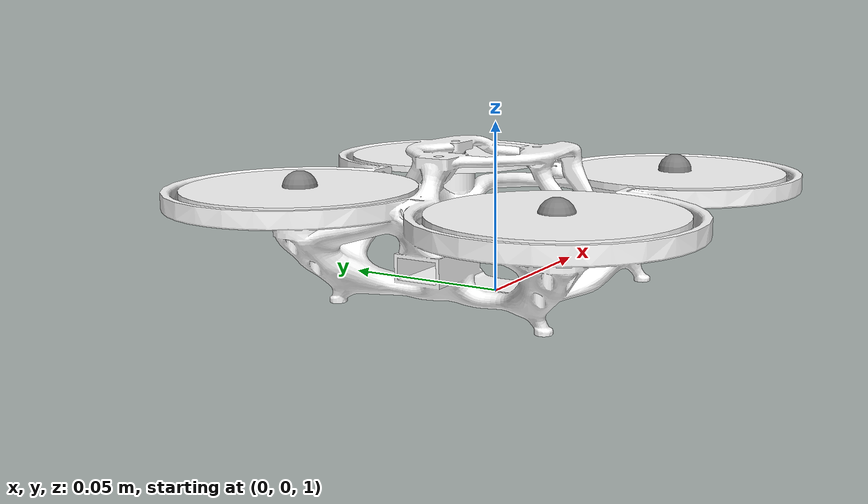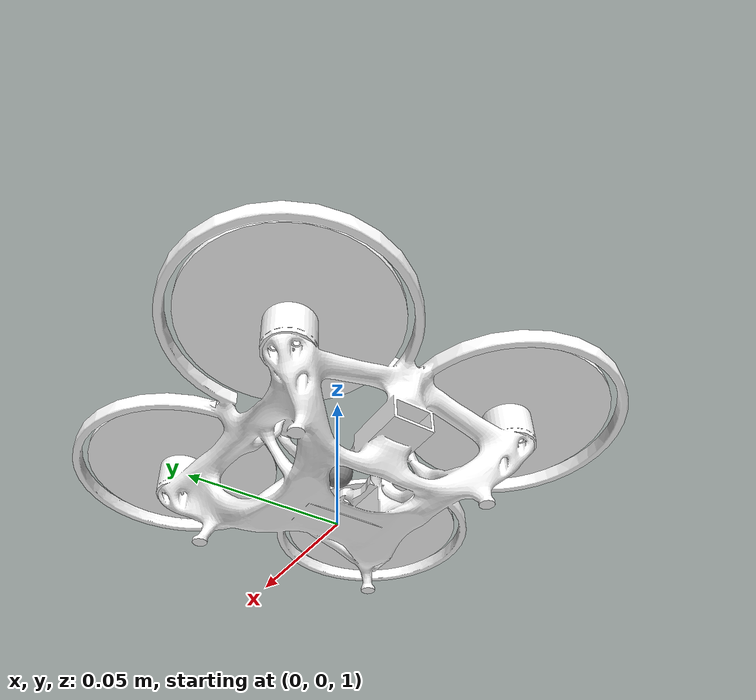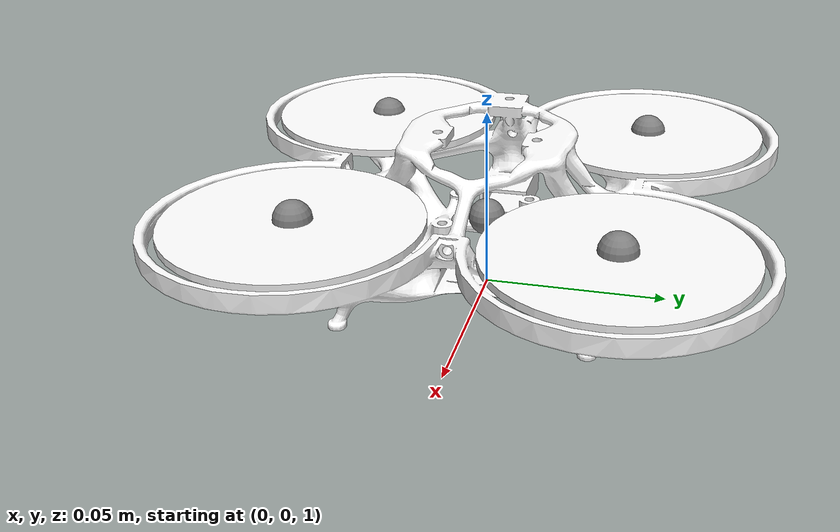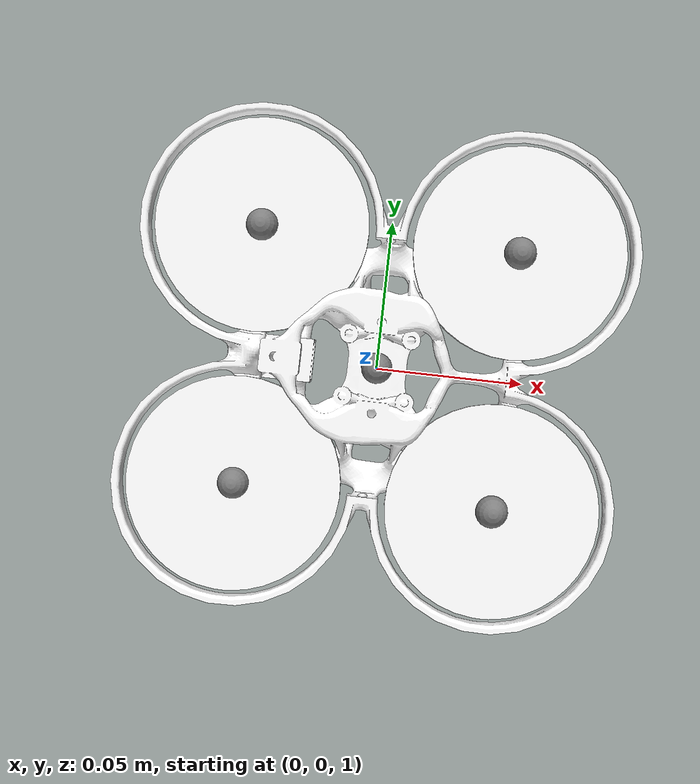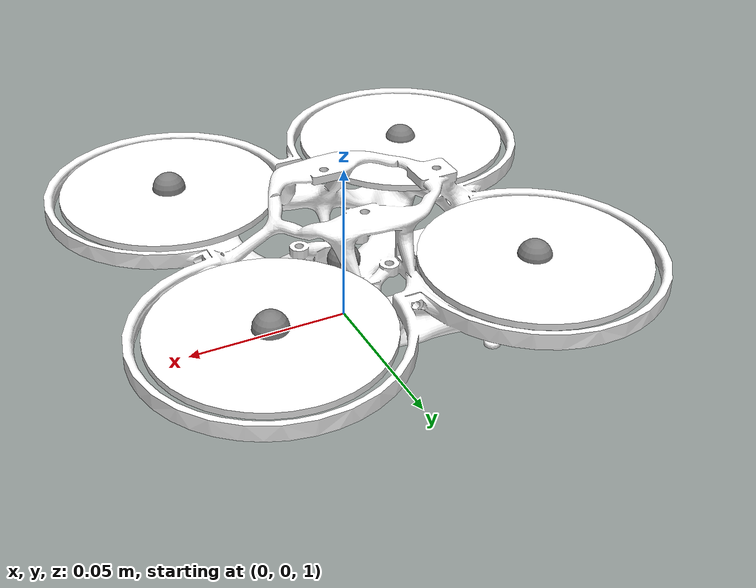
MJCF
<mujoco model="drone attitude-only scene">
  <include file="drone_attitude_only.xml"/>
  <statistic center="0 0 1.0" extent="2"/>

  <visual>
    <headlight diffuse="0.6 0.6 0.6" ambient="0.3 0.3 0.3" specular="0 0 0"/>
    <rgba haze="0.15 0.25 0.35 1"/>
    <global azimuth="120" elevation="-20" offwidth="1920" offheight="1080"/>
  </visual>

  <asset>
    <texture type="skybox" builtin="gradient" rgb1="0.3 0.5 0.7" rgb2="0 0 0" width="512" height="3072"/>
    <texture type="2d" name="groundplane" builtin="checker" mark="edge" rgb1="0.2 0.3 0.4" rgb2="0.1 0.2 0.3"
      markrgb="0.8 0.8 0.8" width="300" height="300"/>
    <material name="groundplane" texture="groundplane" texuniform="true" texrepeat="5 5" reflectance="0.2"/>
  </asset>

  <worldbody>
    <light pos="0 0 2.0" dir="0 0 -1" directional="true"/>
    <geom name="floor" size="0 0 0.05" type="plane" material="groundplane"/>
  </worldbody>
</mujoco>

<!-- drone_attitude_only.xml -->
<mujoco model="urdfdrone_attitude_only">
  <compiler autolimits="true" assetdir="assets/drone"/>

  <option timestep="0.01" density="1.225" viscosity="1.8e-5" gravity="0 0 -9.81"/>

  <default>
    <default class="x2">
      <geom mass="0"/>
      <motor ctrlrange="0 13"/>
      <mesh scale="0.01 0.01 0.01"/>
      <default class="visual">
        <geom group="2" type="mesh" contype="0" conaffinity="0"/>
      </default>
      <site group="5"/>
    </default>
  </default>

  <asset>
    <mesh name="base_link" content_type="model/stl" file="base_link.STL"/>
    <mesh name="prop1" content_type="model/stl" file="prop1.STL"/>
    <mesh name="prop2" content_type="model/stl" file="prop2.STL"/>
    <mesh name="prop3" content_type="model/stl" file="prop3.STL"/>
    <mesh name="prop4" content_type="model/stl" file="prop4.STL"/>
  </asset>

  <worldbody>
    <body name="base_link" pos="0 0 1.0">
      <joint name="attitude" type="ball" damping="0.04"/>
      <inertial pos="0 0 0" mass="0.195" diaginertia="4.16e-4 4.23e-4 5.37e-4"/>

      <geom type="mesh" rgba="1 1 1 1" mesh="base_link"/>
      <geom type="mesh" rgba="1 1 1 1" mesh="prop1" pos="0.039799 -0.039799 0.0336"/>
      <geom type="mesh" rgba="1 1 1 1" mesh="prop2" pos="-0.039799 -0.039799 0.032484"/>
      <geom type="mesh" rgba="1 1 1 1" mesh="prop3" pos="-0.039799 0.039799 0.033094"/>
      <geom type="mesh" rgba="1 1 1 1" mesh="prop4" pos="0.039799 0.039799 0.0336"/>

      <site name="imu" pos="0 0 0.02"/>
      <site name="thrust1" pos="0.039799 -0.039799 0.0336"/>
      <site name="thrust2" pos="-0.039799 -0.039799 0.032484"/>
      <site name="thrust3" pos="-0.039799 0.039799 0.033094"/>
      <site name="thrust4" pos="0.039799 0.039799 0.0336"/>
    </body>
  </worldbody>

  <actuator>
    <motor class="x2" name="thrust1" site="thrust1" gear="0 0 1 0 0  .0201"/>
    <motor class="x2" name="thrust2" site="thrust2" gear="0 0 1 0 0  -.0201"/>
    <motor class="x2" name="thrust3" site="thrust3" gear="0 0 1 0 0  .0201"/>
    <motor class="x2" name="thrust4" site="thrust4" gear="0 0 1 0 0 -.0201"/>
  </actuator>

  <sensor>
    <gyro name="body_gyro" site="imu"/>
    <accelerometer name="body_linacc" site="imu"/>
    <framequat name="body_quat" objtype="site" objname="imu"/>
  </sensor>

  <keyframe>
    <key name="hover" qpos="1 0 0 0" ctrl="2.4 2.4 2.4 2.4"/>
  </keyframe>
</mujoco>
